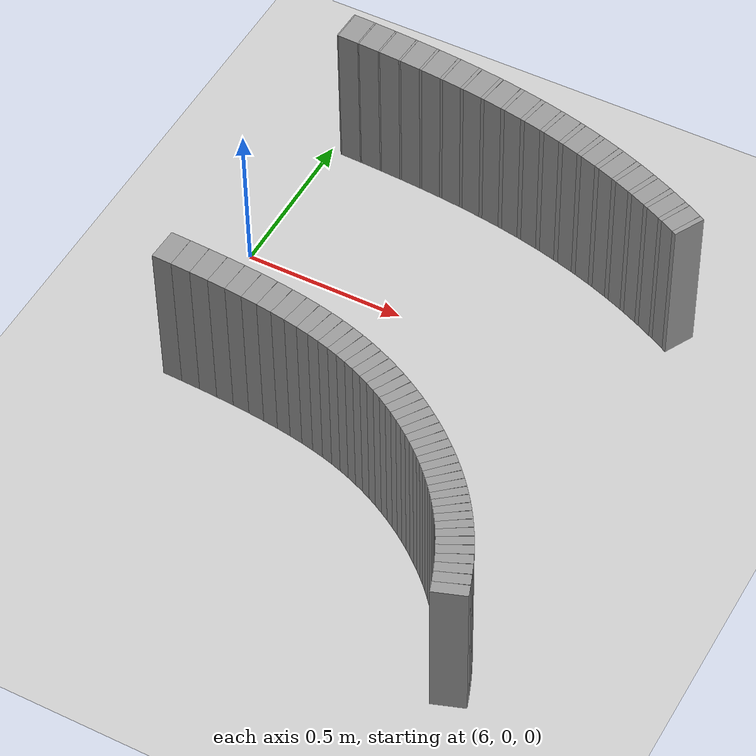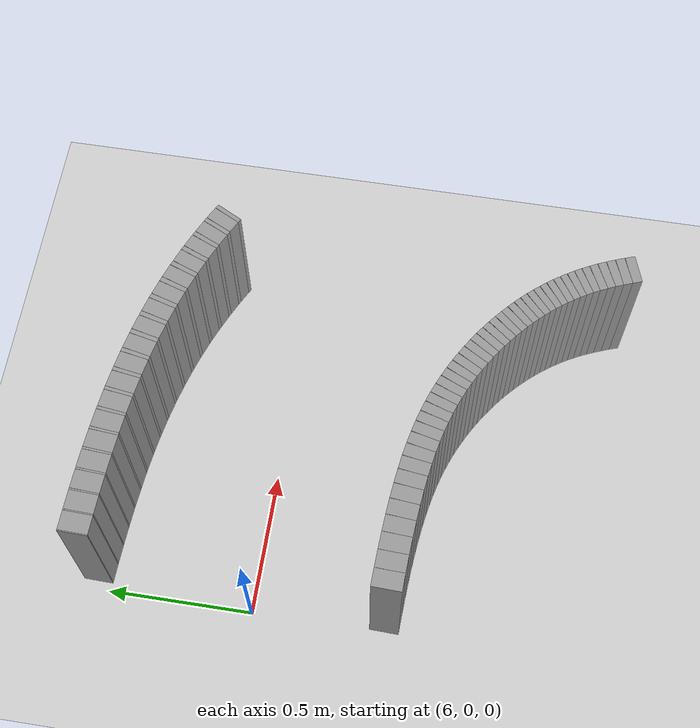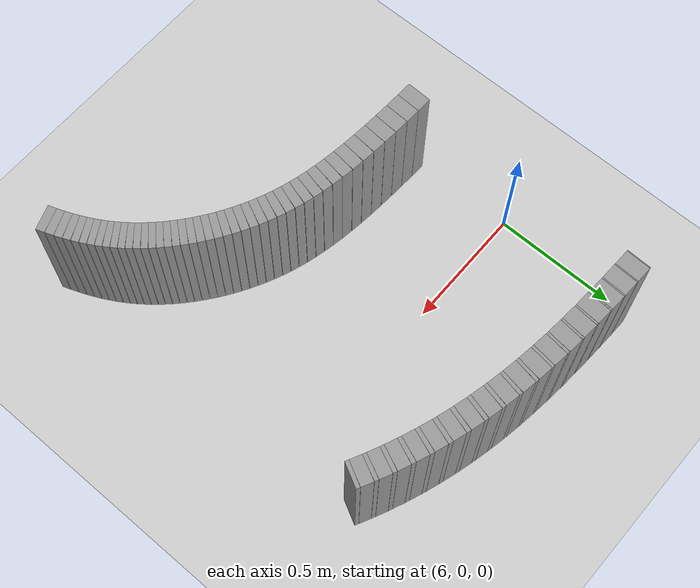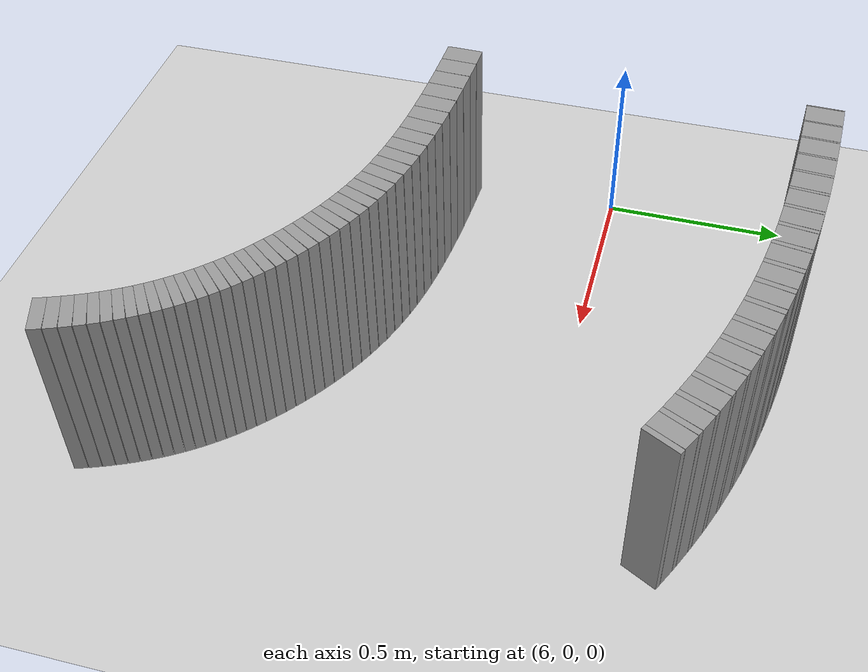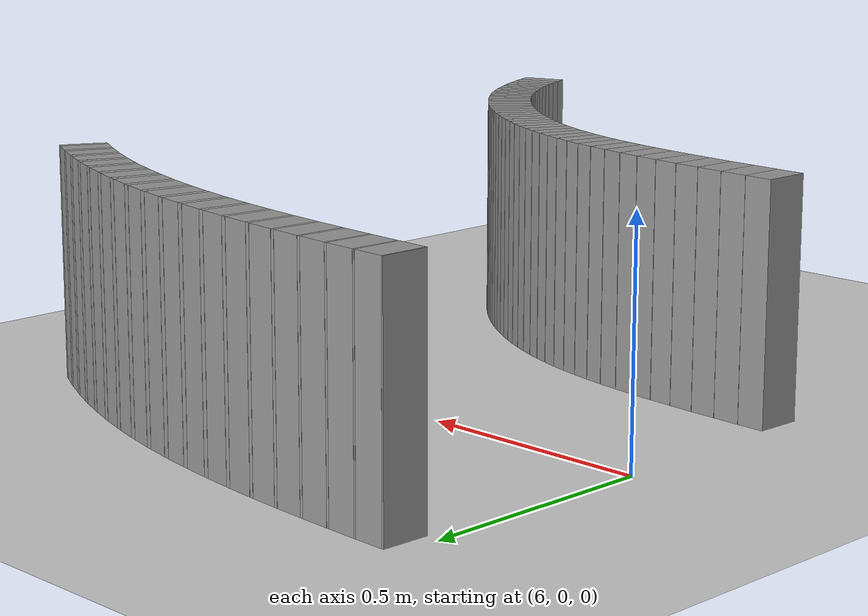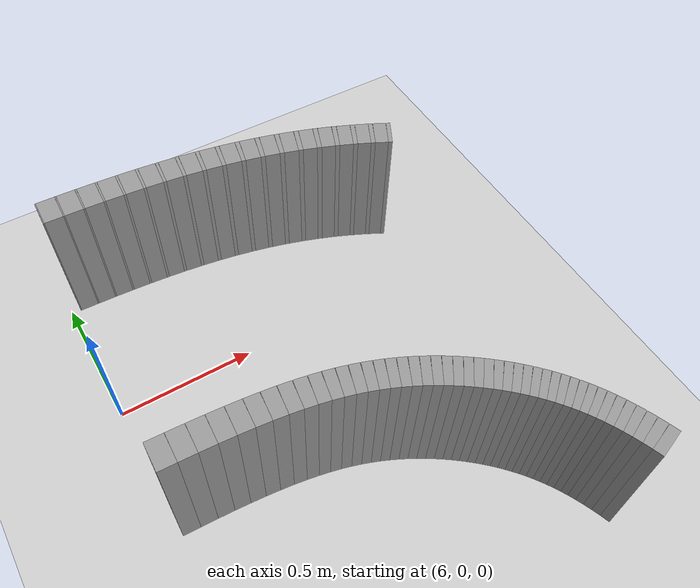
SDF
<sdf version="1.6">
 <world name="default">
  <include><uri>model://ground_plane</uri></include>
  <include><uri>model://sun</uri></include>
  <model name="wall_99_outward">
   <static>true</static>
   <link name="link">
    <collision name="collision">
     <geometry><box><size>0.0035715381212573635 0.1 0.5</size></box></geometry>
    </collision>
    <visual name="visual">
     <geometry><box><size>0.0035715381212573635 0.1 0.5</size></box></geometry>
     <material>
      <script><uri>file://media/materials/scripts/gazebo.material</uri><name>Gazebo/Gray</name></script>
     </material>
    </visual>
   </link>
   <pose>6.0343550450085255 0.5442552626833811 0.25 0 0 -0.026950799382398007</pose>
  </model>
  <model name="wall_100_outward">
   <static>true</static>
   <link name="link">
    <collision name="collision">
     <geometry><box><size>0.06600836155899549 0.1 0.5</size></box></geometry>
    </collision>
    <visual name="visual">
     <geometry><box><size>0.06600836155899549 0.1 0.5</size></box></geometry>
     <material>
      <script><uri>file://media/materials/scripts/gazebo.material</uri><name>Gazebo/Gray</name></script>
     </material>
    </visual>
   </link>
   <pose>6.069128973967636 0.5431999320155294 0.25 0 0 -0.030522345096724832</pose>
  </model>
  <model name="wall_101_outward">
   <static>true</static>
   <link name="link">
    <collision name="collision">
     <geometry><box><size>0.004440650701603784 0.1 0.5</size></box></geometry>
    </collision>
    <visual name="visual">
     <geometry><box><size>0.004440650701603784 0.1 0.5</size></box></geometry>
     <material>
      <script><uri>file://media/materials/scripts/gazebo.material</uri><name>Gazebo/Gray</name></script>
     </material>
    </visual>
   </link>
   <pose>6.104336750782357 0.5421151099818788 0.25 0 0 -0.03496301039295433</pose>
  </model>
  <model name="wall_102_outward">
   <static>true</static>
   <link name="link">
    <collision name="collision">
     <geometry><box><size>0.06585710666801786 0.1 0.5</size></box></geometry>
    </collision>
    <visual name="visual">
     <geometry><box><size>0.06585710666801786 0.1 0.5</size></box></geometry>
     <material>
      <script><uri>file://media/materials/scripts/gazebo.material</uri><name>Gazebo/Gray</name></script>
     </material>
    </visual>
   </link>
   <pose>6.139458712582982 0.5407403262379198 0.25 0 0 -0.039403675689149625</pose>
  </model>
  <model name="wall_103_outward">
   <static>true</static>
   <link name="link">
    <collision name="collision">
     <geometry><box><size>0.0054555743593320246 0.1 0.5</size></box></geometry>
    </collision>
    <visual name="visual">
     <geometry><box><size>0.0054555743593320246 0.1 0.5</size></box></geometry>
     <material>
      <script><uri>file://media/materials/scripts/gazebo.material</uri><name>Gazebo/Gray</name></script>
     </material>
    </visual>
   </link>
   <pose>6.175086748973018 0.5393208304131176 0.25 0 0 -0.04485927711146658</pose>
  </model>
  <model name="wall_104_outward">
   <static>true</static>
   <link name="link">
    <collision name="collision">
     <geometry><box><size>0.06538779478292858 0.1 0.5</size></box></geometry>
    </collision>
    <visual name="visual">
     <geometry><box><size>0.06538779478292858 0.1 0.5</size></box></geometry>
     <material>
      <script><uri>file://media/materials/scripts/gazebo.material</uri><name>Gazebo/Gray</name></script>
     </material>
    </visual>
   </link>
   <pose>6.210464314373615 0.537554209397247 0.25 0 0 -0.050314878533820814</pose>
  </model>
  <model name="wall_105_outward">
   <static>true</static>
   <link name="link">
    <collision name="collision">
     <geometry><box><size>0.006613005210760517 0.1 0.5</size></box></geometry>
    </collision>
    <visual name="visual">
     <geometry><box><size>0.006613005210760517 0.1 0.5</size></box></geometry>
     <material>
      <script><uri>file://media/materials/scripts/gazebo.material</uri><name>Gazebo/Gray</name></script>
     </material>
    </visual>
   </link>
   <pose>6.246417982984882 0.5357217832041461 0.25 0 0 -0.05692793194535055</pose>
  </model>
  <model name="wall_106_outward">
   <static>true</static>
   <link name="link">
    <collision name="collision">
     <geometry><box><size>0.06462893867206293 0.1 0.5</size></box></geometry>
    </collision>
    <visual name="visual">
     <geometry><box><size>0.06462893867206293 0.1 0.5</size></box></geometry>
     <material>
      <script><uri>file://media/materials/scripts/gazebo.material</uri><name>Gazebo/Gray</name></script>
     </material>
    </visual>
   </link>
   <pose>6.281968386341827 0.5334817406812766 0.25 0 0 -0.0635409853568619</pose>
  </model>
  <model name="wall_107_outward">
   <static>true</static>
   <link name="link">
    <collision name="collision">
     <geometry><box><size>0.00789868769581411 0.1 0.5</size></box></geometry>
    </collision>
    <visual name="visual">
     <geometry><box><size>0.00789868769581411 0.1 0.5</size></box></geometry>
     <material>
      <script><uri>file://media/materials/scripts/gazebo.material</uri><name>Gazebo/Gray</name></script>
     </material>
    </visual>
   </link>
   <pose>6.318156913607428 0.5311479286312943 0.25 0 0 -0.07143975518721715</pose>
  </model>
  <model name="wall_108_outward">
   <static>true</static>
   <link name="link">
    <collision name="collision">
     <geometry><box><size>0.06362568449411393 0.1 0.5</size></box></geometry>
    </collision>
    <visual name="visual">
     <geometry><box><size>0.06362568449411393 0.1 0.5</size></box></geometry>
     <material>
      <script><uri>file://media/materials/scripts/gazebo.material</uri><name>Gazebo/Gray</name></script>
     </material>
    </visual>
   </link>
   <pose>6.353808953902233 0.5283446915011467 0.25 0 0 -0.07933852501755072</pose>
  </model>
  <model name="wall_109_outward">
   <static>true</static>
   <link name="link">
    <collision name="collision">
     <geometry><box><size>0.00928514607294143 0.1 0.5</size></box></geometry>
    </collision>
    <visual name="visual">
     <geometry><box><size>0.00928514607294143 0.1 0.5</size></box></geometry>
     <material>
      <script><uri>file://media/materials/scripts/gazebo.material</uri><name>Gazebo/Gray</name></script>
     </material>
    </visual>
   </link>
   <pose>6.390146077242685 0.5254124504934172 0.25 0 0 -0.08862380451382314</pose>
  </model>
  <model name="wall_110_outward">
   <static>true</static>
   <link name="link">
    <collision name="collision">
     <geometry><box><size>0.06243150331719219 0.1 0.5</size></box></geometry>
    </collision>
    <visual name="visual">
     <geometry><box><size>0.06243150331719219 0.1 0.5</size></box></geometry>
     <material>
      <script><uri>file://media/materials/scripts/gazebo.material</uri><name>Gazebo/Gray</name></script>
     </material>
    </visual>
   </link>
   <pose>6.425836681510667 0.5219501214494509 0.25 0 0 -0.09790908401011977</pose>
  </model>
  <model name="wall_111_outward">
   <static>true</static>
   <link name="link">
    <collision name="collision">
     <geometry><box><size>0.010732943361079831 0.1 0.5</size></box></geometry>
    </collision>
    <visual name="visual">
     <geometry><box><size>0.010732943361079831 0.1 0.5</size></box></geometry>
     <material>
      <script><uri>file://media/materials/scripts/gazebo.material</uri><name>Gazebo/Gray</name></script>
     </material>
    </visual>
   </link>
   <pose>6.462237764836258 0.5183168172873069 0.25 0 0 -0.10864223344737728</pose>
  </model>
  <model name="wall_112_outward">
   <static>true</static>
   <link name="link">
    <collision name="collision">
     <geometry><box><size>0.061103675943134726 0.1 0.5</size></box></geometry>
    </collision>
    <visual name="visual">
     <geometry><box><size>0.061103675943134726 0.1 0.5</size></box></geometry>
     <material>
      <script><uri>file://media/materials/scripts/gazebo.material</uri><name>Gazebo/Gray</name></script>
     </material>
    </visual>
   </link>
   <pose>6.497907004215357 0.514096456781485 0.25 0 0 -0.11937538288462152</pose>
  </model>
  <model name="wall_113_outward">
   <static>true</static>
   <link name="link">
    <collision name="collision">
     <geometry><box><size>0.012174328493829763 0.1 0.5</size></box></geometry>
    </collision>
    <visual name="visual">
     <geometry><box><size>0.012174328493829763 0.1 0.5</size></box></geometry>
     <material>
      <script><uri>file://media/materials/scripts/gazebo.material</uri><name>Gazebo/Gray</name></script>
     </material>
    </visual>
   </link>
   <pose>6.534275981106332 0.5096595165702025 0.25 0 0 -0.13155001213338482</pose>
  </model>
  <model name="wall_114_outward">
   <static>true</static>
   <link name="link">
    <collision name="collision">
     <geometry><box><size>0.05970226444059432 0.1 0.5</size></box></geometry>
    </collision>
    <visual name="visual">
     <geometry><box><size>0.05970226444059432 0.1 0.5</size></box></geometry>
     <material>
      <script><uri>file://media/materials/scripts/gazebo.material</uri><name>Gazebo/Gray</name></script>
     </material>
    </visual>
   </link>
   <pose>6.569853899404835 0.5045854698929859 0.25 0 0 -0.14372464138215557</pose>
  </model>
  <model name="wall_115_outward">
   <static>true</static>
   <link name="link">
    <collision name="collision">
     <geometry><box><size>0.013542288862193665 0.1 0.5</size></box></geometry>
    </collision>
    <visual name="visual">
     <geometry><box><size>0.013542288862193665 0.1 0.5</size></box></geometry>
     <material>
      <script><uri>file://media/materials/scripts/gazebo.material</uri><name>Gazebo/Gray</name></script>
     </material>
    </visual>
   </link>
   <pose>6.60608482942434 0.4992493864340397 0.25 0 0 -0.1572673442066646</pose>
  </model>
  <model name="wall_116_outward">
   <static>true</static>
   <link name="link">
    <collision name="collision">
     <geometry><box><size>0.05827645962992823 0.1 0.5</size></box></geometry>
    </collision>
    <visual name="visual">
     <geometry><box><size>0.05827645962992823 0.1 0.5</size></box></geometry>
     <material>
      <script><uri>file://media/materials/scripts/gazebo.material</uri><name>Gazebo/Gray</name></script>
     </material>
    </visual>
   </link>
   <pose>6.6414866036327265 0.49323595508565055 0.25 0 0 -0.17081004703118405</pose>
  </model>
  <model name="wall_117_outward">
   <static>true</static>
   <link name="link">
    <collision name="collision">
     <geometry><box><size>0.014762282567051914 0.1 0.5</size></box></geometry>
    </collision>
    <visual name="visual">
     <geometry><box><size>0.014762282567051914 0.1 0.5</size></box></geometry>
     <material>
      <script><uri>file://media/materials/scripts/gazebo.material</uri><name>Gazebo/Gray</name></script>
     </material>
    </visual>
   </link>
   <pose>6.677455208731447 0.4869211280680824 0.25 0 0 -0.18557286582919258</pose>
  </model>
  <model name="wall_118_outward">
   <static>true</static>
   <link name="link">
    <collision name="collision">
     <geometry><box><size>0.05687086078336409 0.1 0.5</size></box></geometry>
    </collision>
    <visual name="visual">
     <geometry><box><size>0.05687086078336409 0.1 0.5</size></box></geometry>
     <material>
      <script><uri>file://media/materials/scripts/gazebo.material</uri><name>Gazebo/Gray</name></script>
     </material>
    </visual>
   </link>
   <pose>6.712576338097009 0.4799006340133696 0.25 0 0 -0.2003356846272059</pose>
  </model>
  <model name="wall_119_outward">
   <static>true</static>
   <link name="link">
    <collision name="collision">
     <geometry><box><size>0.015770361553524747 0.1 0.5</size></box></geometry>
    </collision>
    <visual name="visual">
     <geometry><box><size>0.015770361553524747 0.1 0.5</size></box></geometry>
     <material>
      <script><uri>file://media/materials/scripts/gazebo.material</uri><name>Gazebo/Gray</name></script>
     </material>
    </visual>
   </link>
   <pose>6.748144824097736 0.4725512237179995 0.25 0 0 -0.21610669994669354</pose>
  </model>
  <model name="wall_120_outward">
   <static>true</static>
   <link name="link">
    <collision name="collision">
     <geometry><box><size>0.05551400143164867 0.1 0.5</size></box></geometry>
    </collision>
    <visual name="visual">
     <geometry><box><size>0.05551400143164867 0.1 0.5</size></box></geometry>
     <material>
      <script><uri>file://media/materials/scripts/gazebo.material</uri><name>Gazebo/Gray</name></script>
     </material>
    </visual>
   </link>
   <pose>6.782860722136404 0.4644817077548206 0.25 0 0 -0.2318777152661921</pose>
  </model>
  <model name="wall_121_outward">
   <static>true</static>
   <link name="link">
    <collision name="collision">
     <geometry><box><size>0.016513590616844907 0.1 0.5</size></box></geometry>
    </collision>
    <visual name="visual">
     <geometry><box><size>0.016513590616844907 0.1 0.5</size></box></geometry>
     <material>
      <script><uri>file://media/materials/scripts/gazebo.material</uri><name>Gazebo/Gray</name></script>
     </material>
    </visual>
   </link>
   <pose>6.817878237035133 0.45607310192546774 0.25 0 0 -0.2483920565141986</pose>
  </model>
  <model name="wall_122_outward">
   <static>true</static>
   <link name="link">
    <collision name="collision">
     <geometry><box><size>0.05422541529354707 0.1 0.5</size></box></geometry>
    </collision>
    <visual name="visual">
     <geometry><box><size>0.05422541529354707 0.1 0.5</size></box></geometry>
     <material>
      <script><uri>file://media/materials/scripts/gazebo.material</uri><name>Gazebo/Gray</name></script>
     </material>
    </visual>
   </link>
   <pose>6.852048558268175 0.44694458427315364 0.25 0 0 -0.26490639776220887</pose>
  </model>
  <model name="wall_123_outward">
   <static>true</static>
   <link name="link">
    <collision name="collision">
     <geometry><box><size>0.016972128402360193 0.1 0.5</size></box></geometry>
    </collision>
    <visual name="visual">
     <geometry><box><size>0.016972128402360193 0.1 0.5</size></box></geometry>
     <material>
      <script><uri>file://media/materials/scripts/gazebo.material</uri><name>Gazebo/Gray</name></script>
     </material>
    </visual>
   </link>
   <pose>6.88636665003092 0.43748546936980254 0.25 0 0 -0.2818793410826893</pose>
  </model>
  <model name="wall_124_outward">
   <static>true</static>
   <link name="link">
    <collision name="collision">
     <geometry><box><size>0.05300797966651234 0.1 0.5</size></box></geometry>
    </collision>
    <visual name="visual">
     <geometry><box><size>0.05300797966651234 0.1 0.5</size></box></geometry>
     <material>
      <script><uri>file://media/materials/scripts/gazebo.material</uri><name>Gazebo/Gray</name></script>
     </material>
    </visual>
   </link>
   <pose>6.919847007762147 0.4273215756518422 0.25 0 0 -0.29885228440317746</pose>
  </model>
  <model name="wall_125_outward">
   <static>true</static>
   <link name="link">
    <collision name="collision">
     <geometry><box><size>0.017135097088498644 0.1 0.5</size></box></geometry>
    </collision>
    <visual name="visual">
     <geometry><box><size>0.017135097088498644 0.1 0.5</size></box></geometry>
     <material>
      <script><uri>file://media/materials/scripts/gazebo.material</uri><name>Gazebo/Gray</name></script>
     </material>
    </visual>
   </link>
   <pose>6.95331957617584 0.4168557602776413 0.25 0 0 -0.3159882201129042</pose>
  </model>
  <model name="wall_126_outward">
   <static>true</static>
   <link name="link">
    <collision name="collision">
     <geometry><box><size>0.05185879348912261 0.1 0.5</size></box></geometry>
    </collision>
    <visual name="visual">
     <geometry><box><size>0.05185879348912261 0.1 0.5</size></box></geometry>
     <material>
      <script><uri>file://media/materials/scripts/gazebo.material</uri><name>Gazebo/Gray</name></script>
     </material>
    </visual>
   </link>
   <pose>6.9859668809165285 0.40571450826396993 0.25 0 0 -0.3331241558226084</pose>
  </model>
  <model name="wall_127_outward">
   <static>true</static>
   <link name="link">
    <collision name="collision">
     <geometry><box><size>0.01705574055427711 0.1 0.5</size></box></geometry>
    </collision>
    <visual name="visual">
     <geometry><box><size>0.01705574055427711 0.1 0.5</size></box></geometry>
     <material>
      <script><uri>file://media/materials/scripts/gazebo.material</uri><name>Gazebo/Gray</name></script>
     </material>
    </visual>
   </link>
   <pose>7.018481138638884 0.3943100369248479 0.25 0 0 -0.3501807233994275</pose>
  </model>
  <model name="wall_128_outward">
   <static>true</static>
   <link name="link">
    <collision name="collision">
     <geometry><box><size>0.050766933565847445 0.1 0.5</size></box></geometry>
    </collision>
    <visual name="visual">
     <geometry><box><size>0.050766933565847445 0.1 0.5</size></box></geometry>
     <material>
      <script><uri>file://media/materials/scripts/gazebo.material</uri><name>Gazebo/Gray</name></script>
     </material>
    </visual>
   </link>
   <pose>7.0501824275901575 0.3822707642892077 0.25 0 0 -0.367237290976257</pose>
  </model>
  <model name="wall_129_outward">
   <static>true</static>
   <link name="link">
    <collision name="collision">
     <geometry><box><size>0.016775270797243863 0.1 0.5</size></box></geometry>
    </collision>
    <visual name="visual">
     <geometry><box><size>0.016775270797243863 0.1 0.5</size></box></geometry>
     <material>
      <script><uri>file://media/materials/scripts/gazebo.material</uri><name>Gazebo/Gray</name></script>
     </material>
    </visual>
   </link>
   <pose>7.081650148065547 0.37001474567581616 0.25 0 0 -0.3840133486604953</pose>
  </model>
  <model name="wall_130_outward">
   <static>true</static>
   <link name="link">
    <collision name="collision">
     <geometry><box><size>0.04972005868759293 0.1 0.5</size></box></geometry>
    </collision>
    <visual name="visual">
     <geometry><box><size>0.04972005868759293 0.1 0.5</size></box></geometry>
     <material>
      <script><uri>file://media/materials/scripts/gazebo.material</uri><name>Gazebo/Gray</name></script>
     </material>
    </visual>
   </link>
   <pose>7.11231685362689 0.3571733400658519 0.25 0 0 -0.400789406344744</pose>
  </model>
  <model name="wall_131_outward">
   <static>true</static>
   <link name="link">
    <collision name="collision">
     <geometry><box><size>0.01636110494969957 0.1 0.5</size></box></geometry>
    </collision>
    <visual name="visual">
     <geometry><box><size>0.01636110494969957 0.1 0.5</size></box></geometry>
     <material>
      <script><uri>file://media/materials/scripts/gazebo.material</uri><name>Gazebo/Gray</name></script>
     </material>
    </visual>
   </link>
   <pose>7.142685851916106 0.34415990288512727 0.25 0 0 -0.4171512413215136</pose>
  </model>
  <model name="wall_132_outward">
   <static>true</static>
   <link name="link">
    <collision name="collision">
     <geometry><box><size>0.04870589130509277 0.1 0.5</size></box></geometry>
    </collision>
    <visual name="visual">
     <geometry><box><size>0.04870589130509277 0.1 0.5</size></box></geometry>
     <material>
      <script><uri>file://media/materials/scripts/gazebo.material</uri><name>Gazebo/Gray</name></script>
     </material>
    </visual>
   </link>
   <pose>7.172265088319548 0.330615754993069 0.25 0 0 -0.4335130762982709</pose>
  </model>
  <model name="wall_133_outward">
   <static>true</static>
   <link name="link">
    <collision name="collision">
     <geometry><box><size>0.015866385547890834 0.1 0.5</size></box></geometry>
    </collision>
    <visual name="visual">
     <geometry><box><size>0.015866385547890834 0.1 0.5</size></box></geometry>
     <material>
      <script><uri>file://media/materials/scripts/gazebo.material</uri><name>Gazebo/Gray</name></script>
     </material>
    </visual>
   </link>
   <pose>7.201510838479306 0.3169397836093649 0.25 0 0 -0.4493801276280378</pose>
  </model>
  <model name="wall_134_outward">
   <static>true</static>
   <link name="link">
    <collision name="collision">
     <geometry><box><size>0.04771856558243906 0.1 0.5</size></box></geometry>
    </collision>
    <visual name="visual">
     <geometry><box><size>0.04771856558243906 0.1 0.5</size></box></geometry>
     <material>
      <script><uri>file://media/materials/scripts/gazebo.material</uri><name>Gazebo/Gray</name></script>
     </material>
    </visual>
   </link>
   <pose>7.2299796927927416 0.30278922942205533 0.25 0 0 -0.4652471789577876</pose>
  </model>
  <model name="wall_135_outward">
   <static>true</static>
   <link name="link">
    <collision name="collision">
     <geometry><box><size>0.01535135360729267 0.1 0.5</size></box></geometry>
    </collision>
    <visual name="visual">
     <geometry><box><size>0.01535135360729267 0.1 0.5</size></box></geometry>
     <material>
      <script><uri>file://media/materials/scripts/gazebo.material</uri><name>Gazebo/Gray</name></script>
     </material>
    </visual>
   </link>
   <pose>7.258109150575988 0.28853636583887854 0.25 0 0 -0.4805991355894005</pose>
  </model>
  <model name="wall_93_inward">
   <static>true</static>
   <link name="link">
    <collision name="collision">
     <geometry><box><size>0.06200223386588574 0.1 0.5</size></box></geometry>
    </collision>
    <visual name="visual">
     <geometry><box><size>0.06200223386588574 0.1 0.5</size></box></geometry>
     <material>
      <script><uri>file://media/materials/scripts/gazebo.material</uri><name>Gazebo/Gray</name></script>
     </material>
    </visual>
   </link>
   <pose>6.038394185629809 -0.4563276664017946 0.25 0 0 -0.030522345096725325</pose>
  </model>
  <model name="wall_94_inward">
   <static>true</static>
   <link name="link">
    <collision name="collision">
     <geometry><box><size>0.06090893165062757 0.1 0.5</size></box></geometry>
    </collision>
    <visual name="visual">
     <geometry><box><size>0.06090893165062757 0.1 0.5</size></box></geometry>
     <material>
      <script><uri>file://media/materials/scripts/gazebo.material</uri><name>Gazebo/Gray</name></script>
     </material>
    </visual>
   </link>
   <pose>6.099811689479732 -0.45847345366264425 0.25 0 0 -0.03940367568914965</pose>
  </model>
  <model name="wall_95_inward">
   <static>true</static>
   <link name="link">
    <collision name="collision">
     <geometry><box><size>0.05935339210093824 0.1 0.5</size></box></geometry>
    </collision>
    <visual name="visual">
     <geometry><box><size>0.05935339210093824 0.1 0.5</size></box></geometry>
     <material>
      <script><uri>file://media/materials/scripts/gazebo.material</uri><name>Gazebo/Gray</name></script>
     </material>
    </visual>
   </link>
   <pose>6.159881655211608 -0.461165710464754 0.25 0 0 -0.05031487853382001</pose>
  </model>
  <model name="wall_96_inward">
   <static>true</static>
   <link name="link">
    <collision name="collision">
     <geometry><box><size>0.057372896712586885 0.1 0.5</size></box></geometry>
    </collision>
    <visual name="visual">
     <geometry><box><size>0.057372896712586885 0.1 0.5</size></box></geometry>
     <material>
      <script><uri>file://media/materials/scripts/gazebo.material</uri><name>Gazebo/Gray</name></script>
     </material>
    </visual>
   </link>
   <pose>6.218149352306785 -0.4644797987692233 0.25 0 0 -0.06354098535686312</pose>
  </model>
  <model name="wall_97_inward">
   <static>true</static>
   <link name="link">
    <collision name="collision">
     <geometry><box><size>0.055033444265433745 0.1 0.5</size></box></geometry>
    </collision>
    <visual name="visual">
     <geometry><box><size>0.055033444265433745 0.1 0.5</size></box></geometry>
     <material>
      <script><uri>file://media/materials/scripts/gazebo.material</uri><name>Gazebo/Gray</name></script>
     </material>
    </visual>
   </link>
   <pose>6.27420807414641 -0.4684821841951522 0.25 0 0 -0.0793385250175502</pose>
  </model>
  <model name="wall_98_inward">
   <static>true</static>
   <link name="link">
    <collision name="collision">
     <geometry><box><size>0.052421949335058574 0.1 0.5</size></box></geometry>
    </collision>
    <visual name="visual">
     <geometry><box><size>0.052421949335058574 0.1 0.5</size></box></geometry>
     <material>
      <script><uri>file://media/materials/scripts/gazebo.material</uri><name>Gazebo/Gray</name></script>
     </material>
    </visual>
   </link>
   <pose>6.327723681617709 -0.4732252250592769 0.25 0 0 -0.09790908401011918</pose>
  </model>
  <model name="wall_99_inward">
   <static>true</static>
   <link name="link">
    <collision name="collision">
     <geometry><box><size>0.049649279738270345 0.1 0.5</size></box></geometry>
    </collision>
    <visual name="visual">
     <geometry><box><size>0.049649279738270345 0.1 0.5</size></box></geometry>
     <material>
      <script><uri>file://media/materials/scripts/gazebo.material</uri><name>Gazebo/Gray</name></script>
     </material>
    </visual>
   </link>
   <pose>6.378457093219948 -0.4787438368528018 0.25 0 0 -0.11937538288462138</pose>
  </model>
  <model name="wall_100_inward">
   <static>true</static>
   <link name="link">
    <collision name="collision">
     <geometry><box><size>0.04684288363246669 0.1 0.5</size></box></geometry>
    </collision>
    <visual name="visual">
     <geometry><box><size>0.04684288363246669 0.1 0.5</size></box></geometry>
     <material>
      <script><uri>file://media/materials/scripts/gazebo.material</uri><name>Gazebo/Gray</name></script>
     </material>
    </visual>
   </link>
   <pose>6.426285013748423 -0.48505491534130946 0.25 0 0 -0.1437246413821529</pose>
  </model>
  <model name="wall_101_inward">
   <static>true</static>
   <link name="link">
    <collision name="collision">
     <geometry><box><size>0.044122748538621186 0.1 0.5</size></box></geometry>
    </collision>
    <visual name="visual">
     <geometry><box><size>0.044122748538621186 0.1 0.5</size></box></geometry>
     <material>
      <script><uri>file://media/materials/scripts/gazebo.material</uri><name>Gazebo/Gray</name></script>
     </material>
    </visual>
   </link>
   <pose>6.471205289863796 -0.4921595833968 0.25 0 0 -0.17081004703118646</pose>
  </model>
  <model name="wall_102_inward">
   <static>true</static>
   <link name="link">
    <collision name="collision">
     <geometry><box><size>0.04160275360190985 0.1 0.5</size></box></geometry>
    </collision>
    <visual name="visual">
     <geometry><box><size>0.04160275360190985 0.1 0.5</size></box></geometry>
     <material>
      <script><uri>file://media/materials/scripts/gazebo.material</uri><name>Gazebo/Gray</name></script>
     </material>
    </visual>
   </link>
   <pose>6.513330959510004 -0.5000490293214968 0.25 0 0 -0.20033568462720314</pose>
  </model>
  <model name="wall_103_inward">
   <static>true</static>
   <link name="link">
    <collision name="collision">
     <geometry><box><size>0.03936991858545657 0.1 0.5</size></box></geometry>
    </collision>
    <visual name="visual">
     <geometry><box><size>0.03936991858545657 0.1 0.5</size></box></geometry>
     <material>
      <script><uri>file://media/materials/scripts/gazebo.material</uri><name>Gazebo/Gray</name></script>
     </material>
    </visual>
   </link>
   <pose>6.552874428178827 -0.5087121779344621 0.25 0 0 -0.23187771526619386</pose>
  </model>
  <model name="wall_104_inward">
   <static>true</static>
   <link name="link">
    <collision name="collision">
     <geometry><box><size>0.03748020726222102 0.1 0.5</size></box></geometry>
    </collision>
    <visual name="visual">
     <geometry><box><size>0.03748020726222102 0.1 0.5</size></box></geometry>
     <material>
      <script><uri>file://media/materials/scripts/gazebo.material</uri><name>Gazebo/Gray</name></script>
     </material>
    </visual>
   </link>
   <pose>6.59011894388941 -0.5181424015801971 0.25 0 0 -0.2649063977622085</pose>
  </model>
  <model name="wall_105_inward">
   <static>true</static>
   <link name="link">
    <collision name="collision">
     <geometry><box><size>0.03595188639559655 0.1 0.5</size></box></geometry>
    </collision>
    <visual name="visual">
     <geometry><box><size>0.03595188639559655 0.1 0.5</size></box></geometry>
     <material>
      <script><uri>file://media/materials/scripts/gazebo.material</uri><name>Gazebo/Gray</name></script>
     </material>
    </visual>
   </link>
   <pose>6.625384496818074 -0.5283414566508023 0.25 0 0 -0.29885228440318096</pose>
  </model>
  <model name="wall_106_inward">
   <static>true</static>
   <link name="link">
    <collision name="collision">
     <geometry><box><size>0.03476087598296998 0.1 0.5</size></box></geometry>
    </collision>
    <visual name="visual">
     <geometry><box><size>0.03476087598296998 0.1 0.5</size></box></geometry>
     <material>
      <script><uri>file://media/materials/scripts/gazebo.material</uri><name>Gazebo/Gray</name></script>
     </material>
    </visual>
   </link>
   <pose>6.658988611725405 -0.5393173493316952 0.25 0 0 -0.3331241558226055</pose>
  </model>
  <model name="wall_107_inward">
   <static>true</static>
   <link name="link">
    <collision name="collision">
     <geometry><box><size>0.033849006817813505 0.1 0.5</size></box></geometry>
    </collision>
    <visual name="visual">
     <geometry><box><size>0.033849006817813505 0.1 0.5</size></box></geometry>
     <material>
      <script><uri>file://media/materials/scripts/gazebo.material</uri><name>Gazebo/Gray</name></script>
     </material>
    </visual>
   </link>
   <pose>6.691209591849505 -0.5510772458983066 0.25 0 0 -0.36723729097626395</pose>
  </model>
  <model name="wall_108_inward">
   <static>true</static>
   <link name="link">
    <collision name="collision">
     <geometry><box><size>0.03314959525540417 0.1 0.5</size></box></geometry>
    </collision>
    <visual name="visual">
     <geometry><box><size>0.03314959525540417 0.1 0.5</size></box></geometry>
     <material>
      <script><uri>file://media/materials/scripts/gazebo.material</uri><name>Gazebo/Gray</name></script>
     </material>
    </visual>
   </link>
   <pose>6.722266916749971 -0.5636203705295132 0.25 0 0 -0.4007894063447438</pose>
  </model>
  <model name="wall_109_inward">
   <static>true</static>
   <link name="link">
    <collision name="collision">
     <geometry><box><size>0.0325900521795155 0.1 0.5</size></box></geometry>
    </collision>
    <visual name="visual">
     <geometry><box><size>0.0325900521795155 0.1 0.5</size></box></geometry>
     <material>
      <script><uri>file://media/materials/scripts/gazebo.material</uri><name>Gazebo/Gray</name></script>
     </material>
    </visual>
   </link>
   <pose>6.752315881531182 -0.5769318630559517 0.25 0 0 -0.43351307629826236</pose>
  </model>
  <model name="wall_110_inward">
   <static>true</static>
   <link name="link">
    <collision name="collision">
     <geometry><box><size>0.03210779265614035 0.1 0.5</size></box></geometry>
    </collision>
    <visual name="visual">
     <geometry><box><size>0.03210779265614035 0.1 0.5</size></box></geometry>
     <material>
      <script><uri>file://media/materials/scripts/gazebo.material</uri><name>Gazebo/Gray</name></script>
     </material>
    </visual>
   </link>
   <pose>6.781451085624235 -0.5909792557810325 0.25 0 0 -0.46524717895779033</pose>
  </model>
  <model name="wall_111_inward">
   <static>true</static>
   <link name="link">
    <collision name="collision">
     <geometry><box><size>0.03164379180290222 0.1 0.5</size></box></geometry>
    </collision>
    <visual name="visual">
     <geometry><box><size>0.03164379180290222 0.1 0.5</size></box></geometry>
     <material>
      <script><uri>file://media/materials/scripts/gazebo.material</uri><name>Gazebo/Gray</name></script>
     </material>
    </visual>
   </link>
   <pose>6.809714243223386 -0.60571087535264 0.25 0 0 -0.49595109222104466</pose>
  </model>
  <model name="wall_112_inward">
   <static>true</static>
   <link name="link">
    <collision name="collision">
     <geometry><box><size>0.031157465994373416 0.1 0.5</size></box></geometry>
    </collision>
    <visual name="visual">
     <geometry><box><size>0.031157465994373416 0.1 0.5</size></box></geometry>
     <material>
      <script><uri>file://media/materials/scripts/gazebo.material</uri><name>Gazebo/Gray</name></script>
     </material>
    </visual>
   </link>
   <pose>6.837105172976658 -0.621057490050291 0.25 0 0 -0.5256834366744275</pose>
  </model>
  <model name="wall_113_inward">
   <static>true</static>
   <link name="link">
    <collision name="collision">
     <geometry><box><size>0.030633993177680792 0.1 0.5</size></box></geometry>
    </collision>
    <visual name="visual">
     <geometry><box><size>0.030633993177680792 0.1 0.5</size></box></geometry>
     <material>
      <script><uri>file://media/materials/scripts/gazebo.material</uri><name>Gazebo/Gray</name></script>
     </material>
    </visual>
   </link>
   <pose>6.8636017832485114 -0.6369407042956627 0.25 0 0 -0.5545814461968477</pose>
  </model>
  <model name="wall_114_inward">
   <static>true</static>
   <link name="link">
    <collision name="collision">
     <geometry><box><size>0.030070102588361715 0.1 0.5</size></box></geometry>
    </collision>
    <visual name="visual">
     <geometry><box><size>0.030070102588361715 0.1 0.5</size></box></geometry>
     <material>
      <script><uri>file://media/materials/scripts/gazebo.material</uri><name>Gazebo/Gray</name></script>
     </material>
    </visual>
   </link>
   <pose>6.889176220960133 -0.65328119326553 0.25 0 0 -0.582800037123021</pose>
  </model>
  <model name="wall_115_inward">
   <static>true</static>
   <link name="link">
    <collision name="collision">
     <geometry><box><size>0.02947282392921266 0.1 0.5</size></box></geometry>
    </collision>
    <visual name="visual">
     <geometry><box><size>0.02947282392921266 0.1 0.5</size></box></geometry>
     <material>
      <script><uri>file://media/materials/scripts/gazebo.material</uri><name>Gazebo/Gray</name></script>
     </material>
    </visual>
   </link>
   <pose>6.913803491655452 -0.6700044438941516 0.25 0 0 -0.6105374191557352</pose>
  </model>
  <model name="wall_116_inward">
   <static>true</static>
   <link name="link">
    <collision name="collision">
     <geometry><box><size>0.02886578548553647 0.1 0.5</size></box></geometry>
    </collision>
    <visual name="visual">
     <geometry><box><size>0.02886578548553647 0.1 0.5</size></box></geometry>
     <material>
      <script><uri>file://media/materials/scripts/gazebo.material</uri><name>Gazebo/Gray</name></script>
     </material>
    </visual>
   </link>
   <pose>6.937471589875268 -0.6870487778902675 0.25 0 0 -0.6379780581313881</pose>
  </model>
  <model name="wall_117_inward">
   <static>true</static>
   <link name="link">
    <collision name="collision">
     <geometry><box><size>0.02826276906730934 0.1 0.5</size></box></geometry>
    </collision>
    <visual name="visual">
     <geometry><box><size>0.02826276906730934 0.1 0.5</size></box></geometry>
     <material>
      <script><uri>file://media/materials/scripts/gazebo.material</uri><name>Gazebo/Gray</name></script>
     </material>
    </visual>
   </link>
   <pose>6.960183317460549 -0.7043676497254667 0.25 0 0 -0.66528230410921</pose>
  </model>
  <model name="wall_118_inward">
   <static>true</static>
   <link name="link">
    <collision name="collision">
     <geometry><box><size>0.02769011836447594 0.1 0.5</size></box></geometry>
    </collision>
    <visual name="visual">
     <geometry><box><size>0.02769011836447594 0.1 0.5</size></box></geometry>
     <material>
      <script><uri>file://media/materials/scripts/gazebo.material</uri><name>Gazebo/Gray</name></script>
     </material>
    </visual>
   </link>
   <pose>6.981955857676969 -0.7219315796771402 0.25 0 0 -0.6926247142507305</pose>
  </model>
  <model name="wall_119_inward">
   <static>true</static>
   <link name="link">
    <collision name="collision">
     <geometry><box><size>0.02716106912274089 0.1 0.5</size></box></geometry>
    </collision>
    <visual name="visual">
     <geometry><box><size>0.02716106912274089 0.1 0.5</size></box></geometry>
     <material>
      <script><uri>file://media/materials/scripts/gazebo.material</uri><name>Gazebo/Gray</name></script>
     </material>
    </visual>
   </link>
   <pose>7.002819714963157 -0.7397282305231783 0.25 0 0 -0.7200943620376035</pose>
  </model>
  <model name="wall_120_inward">
   <static>true</static>
   <link name="link">
    <collision name="collision">
     <geometry><box><size>0.02668094075182772 0.1 0.5</size></box></geometry>
    </collision>
    <visual name="visual">
     <geometry><box><size>0.02668094075182772 0.1 0.5</size></box></geometry>
     <material>
      <script><uri>file://media/materials/scripts/gazebo.material</uri><name>Gazebo/Gray</name></script>
     </material>
    </visual>
   </link>
   <pose>7.022809521744952 -0.7577562285000927 0.25 0 0 -0.747836083234763</pose>
  </model>
  <model name="wall_121_inward">
   <static>true</static>
   <link name="link">
    <collision name="collision">
     <geometry><box><size>0.026255927090187203 0.1 0.5</size></box></geometry>
    </collision>
    <visual name="visual">
     <geometry><box><size>0.026255927090187203 0.1 0.5</size></box></geometry>
     <material>
      <script><uri>file://media/materials/scripts/gazebo.material</uri><name>Gazebo/Gray</name></script>
     </material>
    </visual>
   </link>
   <pose>7.041960691507088 -0.7760229352335803 0.25 0 0 -0.7759196425597202</pose>
  </model>
  <model name="wall_122_inward">
   <static>true</static>
   <link name="link">
    <collision name="collision">
     <geometry><box><size>0.025886886986551762 0.1 0.5</size></box></geometry>
    </collision>
    <visual name="visual">
     <geometry><box><size>0.025886886986551762 0.1 0.5</size></box></geometry>
     <material>
      <script><uri>file://media/materials/scripts/gazebo.material</uri><name>Gazebo/Gray</name></script>
     </material>
    </visual>
   </link>
   <pose>7.0603074093543885 -0.7945425951112286 0.25 0 0 -0.804460728797899</pose>
  </model>
  <model name="wall_123_inward">
   <static>true</static>
   <link name="link">
    <collision name="collision">
     <geometry><box><size>0.02557658790224994 0.1 0.5</size></box></geometry>
    </collision>
    <visual name="visual">
     <geometry><box><size>0.02557658790224994 0.1 0.5</size></box></geometry>
     <material>
      <script><uri>file://media/materials/scripts/gazebo.material</uri><name>Gazebo/Gray</name></script>
     </material>
    </visual>
   </link>
   <pose>7.077881065278737 -0.8133348623238739 0.25 0 0 -0.8335050709799848</pose>
  </model>
  <model name="wall_124_inward">
   <static>true</static>
   <link name="link">
    <collision name="collision">
     <geometry><box><size>0.025330426026841196 0.1 0.5</size></box></geometry>
    </collision>
    <visual name="visual">
     <geometry><box><size>0.025330426026841196 0.1 0.5</size></box></geometry>
     <material>
      <script><uri>file://media/materials/scripts/gazebo.material</uri><name>Gazebo/Gray</name></script>
     </material>
    </visual>
   </link>
   <pose>7.094711492102609 -0.8324261033344331 0.25 0 0 -0.8631434541363047</pose>
  </model>
  <model name="wall_125_inward">
   <static>true</static>
   <link name="link">
    <collision name="collision">
     <geometry><box><size>0.02515461170586945 0.1 0.5</size></box></geometry>
    </collision>
    <visual name="visual">
     <geometry><box><size>0.02515461170586945 0.1 0.5</size></box></geometry>
     <material>
      <script><uri>file://media/materials/scripts/gazebo.material</uri><name>Gazebo/Gray</name></script>
     </material>
    </visual>
   </link>
   <pose>7.110827805056535 -0.8518504084472838 0.25 0 0 -0.8933761476729567</pose>
  </model>
  <model name="wall_126_inward">
   <static>true</static>
   <link name="link">
    <collision name="collision">
     <geometry><box><size>0.02506896895559951 0.1 0.5</size></box></geometry>
    </collision>
    <visual name="visual">
     <geometry><box><size>0.02506896895559951 0.1 0.5</size></box></geometry>
     <material>
      <script><uri>file://media/materials/scripts/gazebo.material</uri><name>Gazebo/Gray</name></script>
     </material>
    </visual>
   </link>
   <pose>7.126262124178866 -0.8716552920027801 0.25 0 0 -0.9242638608560519</pose>
  </model>
  <model name="wall_127_inward">
   <static>true</static>
   <link name="link">
    <collision name="collision">
     <geometry><box><size>0.025108402497761303 0.1 0.5</size></box></geometry>
    </collision>
    <visual name="visual">
     <geometry><box><size>0.025108402497761303 0.1 0.5</size></box></geometry>
     <material>
      <script><uri>file://media/materials/scripts/gazebo.material</uri><name>Gazebo/Gray</name></script>
     </material>
    </visual>
   </link>
   <pose>7.141057234934051 -0.8919134058437337 0.25 0 0 -0.955717908993216</pose>
  </model>
  <model name="wall_128_inward">
   <static>true</static>
   <link name="link">
    <collision name="collision">
     <geometry><box><size>0.02529641571042001 0.1 0.5</size></box></geometry>
    </collision>
    <visual name="visual">
     <geometry><box><size>0.02529641571042001 0.1 0.5</size></box></geometry>
     <material>
      <script><uri>file://media/materials/scripts/gazebo.material</uri><name>Gazebo/Gray</name></script>
     </material>
    </visual>
   </link>
   <pose>7.155265877927082 -0.9127247924459168 0.25 0 0 -0.9876678194786617</pose>
  </model>
  <model name="wall_129_inward">
   <static>true</static>
   <link name="link">
    <collision name="collision">
     <geometry><box><size>0.02567204794253897 0.1 0.5</size></box></geometry>
    </collision>
    <visual name="visual">
     <geometry><box><size>0.02567204794253897 0.1 0.5</size></box></geometry>
     <material>
      <script><uri>file://media/materials/scripts/gazebo.material</uri><name>Gazebo/Gray</name></script>
     </material>
    </visual>
   </link>
   <pose>7.168949082914969 -0.9342200691985277 0.25 0 0 -1.0199376849568498</pose>
  </model>
  <model name="wall_130_inward">
   <static>true</static>
   <link name="link">
    <collision name="collision">
     <geometry><box><size>0.02626187679025649 0.1 0.5</size></box></geometry>
    </collision>
    <visual name="visual">
     <geometry><box><size>0.02626187679025649 0.1 0.5</size></box></geometry>
     <material>
      <script><uri>file://media/materials/scripts/gazebo.material</uri><name>Gazebo/Gray</name></script>
     </material>
    </visual>
   </link>
   <pose>7.182174901879318 -0.9565624993289605 0.25 0 0 -1.0523141018430155</pose>
  </model>
  <model name="wall_131_inward">
   <static>true</static>
   <link name="link">
    <collision name="collision">
     <geometry><box><size>0.02708188183862519 0.1 0.5</size></box></geometry>
    </collision>
    <visual name="visual">
     <geometry><box><size>0.02708188183862519 0.1 0.5</size></box></geometry>
     <material>
      <script><uri>file://media/materials/scripts/gazebo.material</uri><name>Gazebo/Gray</name></script>
     </material>
    </visual>
   </link>
   <pose>7.195010189943616 -0.9799389838321277 0.25 0 0 -1.0845279926149358</pose>
  </model>
  <model name="wall_132_inward">
   <static>true</static>
   <link name="link">
    <collision name="collision">
     <geometry><box><size>0.028139252161154114 0.1 0.5</size></box></geometry>
    </collision>
    <visual name="visual">
     <geometry><box><size>0.028139252161154114 0.1 0.5</size></box></geometry>
     <material>
      <script><uri>file://media/materials/scripts/gazebo.material</uri><name>Gazebo/Gray</name></script>
     </material>
    </visual>
   </link>
   <pose>7.207514902171362 -1.004551647299116 0.25 0 0 -1.1163063651352507</pose>
  </model>
  <model name="wall_133_inward">
   <static>true</static>
   <link name="link">
    <collision name="collision">
     <geometry><box><size>0.029431550723026917 0.1 0.5</size></box></geometry>
    </collision>
    <visual name="visual">
     <geometry><box><size>0.029431550723026917 0.1 0.5</size></box></geometry>
     <material>
      <script><uri>file://media/materials/scripts/gazebo.material</uri><name>Gazebo/Gray</name></script>
     </material>
    </visual>
   </link>
   <pose>7.219738227212014 -1.03060908515478 0.25 0 0 -1.1473560948473702</pose>
  </model>
  <model name="wall_134_inward">
   <static>true</static>
   <link name="link">
    <collision name="collision">
     <geometry><box><size>0.03094051385978454 0.1 0.5</size></box></geometry>
    </collision>
    <visual name="visual">
     <geometry><box><size>0.03094051385978454 0.1 0.5</size></box></geometry>
     <material>
      <script><uri>file://media/materials/scripts/gazebo.material</uri><name>Gazebo/Gray</name></script>
     </material>
    </visual>
   </link>
   <pose>7.231715175680575 -1.0583136667970843 0.25 0 0 -1.1773949591354775</pose>
  </model>
  <model name="wall_135_inward">
   <static>true</static>
   <link name="link">
    <collision name="collision">
     <geometry><box><size>0.0326367689370813 0.1 0.5</size></box></geometry>
    </collision>
    <visual name="visual">
     <geometry><box><size>0.0326367689370813 0.1 0.5</size></box></geometry>
     <material>
      <script><uri>file://media/materials/scripts/gazebo.material</uri><name>Gazebo/Gray</name></script>
     </material>
    </visual>
   </link>
   <pose>7.243464459592581 -1.0878477646704263 0.25 0 0 -1.2061767264491072</pose>
  </model>
  <model name="wall_136_inward">
   <static>true</static>
   <link name="link">
    <collision name="collision">
     <geometry><box><size>0.03448178355369392 0.1 0.5</size></box></geometry>
    </collision>
    <visual name="visual">
     <geometry><box><size>0.03448178355369392 0.1 0.5</size></box></geometry>
     <material>
      <script><uri>file://media/materials/scripts/gazebo.material</uri><name>Gazebo/Gray</name></script>
     </material>
    </visual>
   </link>
   <pose>7.254989058208707 -1.1193628172602776 0.25 0 0 -1.233505334583583</pose>
  </model>
 </world>
</sdf>
